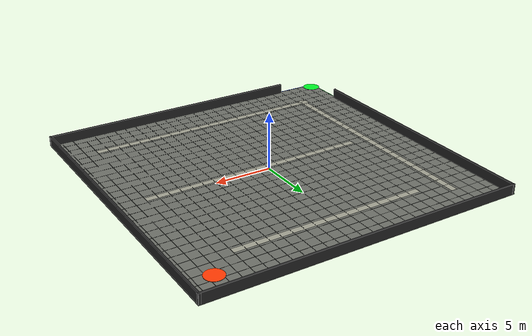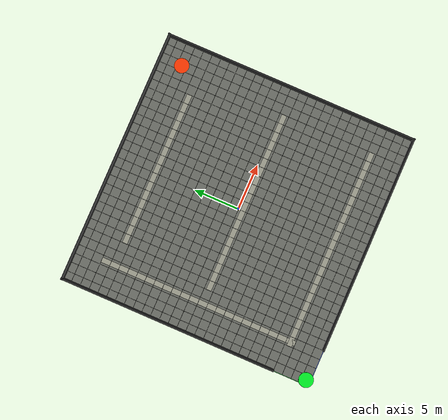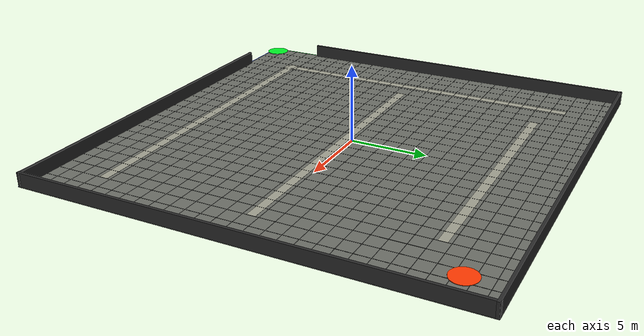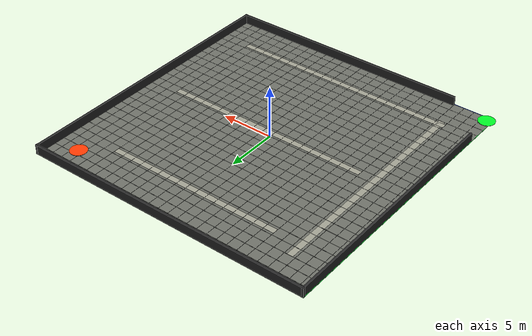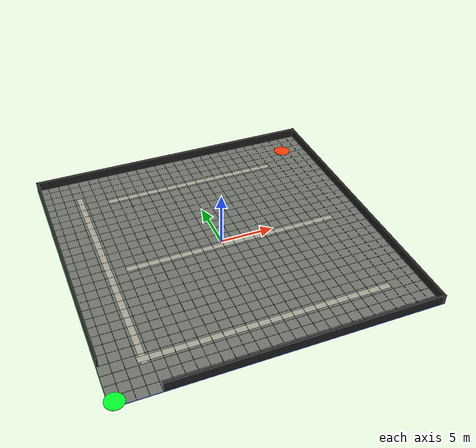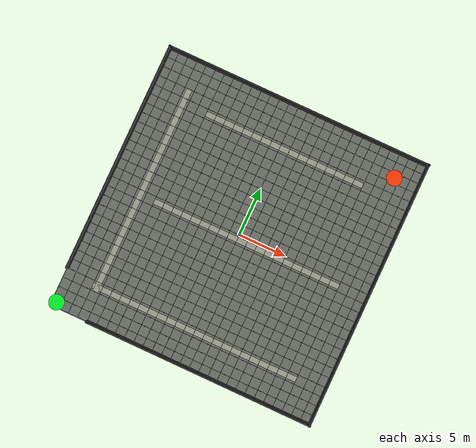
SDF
<sdf version="1.9">
 <world name="substation_complex">
  <model name="substation_map">
   <static>true</static>
   <pose>-14 -14 0 0 0 0</pose>
   <model name="ground_plane">
    <static>true</static>
    <pose>14 14 0 0 0 0</pose>
    <link name="link">
     <collision name="collision">
      <geometry><plane><normal>0 0 1</normal><size>32 32</size></plane></geometry>
     </collision>
    </link>
   </model>
   <model name="substation_floor">
    <static>true</static>
    <pose>14 14 0.01 0 0 0</pose>
    <link name="link">
     <visual name="visual">
      <geometry><box><size>28 28 0.02</size></box></geometry>
      <material>
       <ambient>0.42 0.43 0.40 1</ambient>
       <diffuse>0.42 0.43 0.40 1</diffuse>
       <specular>0.08 0.08 0.08 1</specular>
      </material>
     </visual>
    </link>
   </model>
   <model name="substation_floor_grid">
    <static>true</static>
    <link name="link">
     <visual name="x_grid_00">
      <pose>0 14 0.024 0 0 0</pose>
      <geometry><box><size>0.025 28 0.006</size></box></geometry>
      <material>
       <ambient>0.16 0.17 0.16 1</ambient>
       <diffuse>0.16 0.17 0.16 1</diffuse>
       <specular>0.08 0.08 0.08 1</specular>
      </material>
     </visual>
     <visual name="x_grid_01">
      <pose>1 14 0.024 0 0 0</pose>
      <geometry><box><size>0.025 28 0.006</size></box></geometry>
      <material>
       <ambient>0.16 0.17 0.16 1</ambient>
       <diffuse>0.16 0.17 0.16 1</diffuse>
       <specular>0.08 0.08 0.08 1</specular>
      </material>
     </visual>
     <visual name="x_grid_02">
      <pose>2 14 0.024 0 0 0</pose>
      <geometry><box><size>0.025 28 0.006</size></box></geometry>
      <material>
       <ambient>0.16 0.17 0.16 1</ambient>
       <diffuse>0.16 0.17 0.16 1</diffuse>
       <specular>0.08 0.08 0.08 1</specular>
      </material>
     </visual>
     <visual name="x_grid_03">
      <pose>3 14 0.024 0 0 0</pose>
      <geometry><box><size>0.025 28 0.006</size></box></geometry>
      <material>
       <ambient>0.16 0.17 0.16 1</ambient>
       <diffuse>0.16 0.17 0.16 1</diffuse>
       <specular>0.08 0.08 0.08 1</specular>
      </material>
     </visual>
     <visual name="x_grid_04">
      <pose>4 14 0.024 0 0 0</pose>
      <geometry><box><size>0.025 28 0.006</size></box></geometry>
      <material>
       <ambient>0.16 0.17 0.16 1</ambient>
       <diffuse>0.16 0.17 0.16 1</diffuse>
       <specular>0.08 0.08 0.08 1</specular>
      </material>
     </visual>
     <visual name="x_grid_05">
      <pose>5 14 0.024 0 0 0</pose>
      <geometry><box><size>0.025 28 0.006</size></box></geometry>
      <material>
       <ambient>0.16 0.17 0.16 1</ambient>
       <diffuse>0.16 0.17 0.16 1</diffuse>
       <specular>0.08 0.08 0.08 1</specular>
      </material>
     </visual>
     <visual name="x_grid_06">
      <pose>6 14 0.024 0 0 0</pose>
      <geometry><box><size>0.025 28 0.006</size></box></geometry>
      <material>
       <ambient>0.16 0.17 0.16 1</ambient>
       <diffuse>0.16 0.17 0.16 1</diffuse>
       <specular>0.08 0.08 0.08 1</specular>
      </material>
     </visual>
     <visual name="x_grid_07">
      <pose>7 14 0.024 0 0 0</pose>
      <geometry><box><size>0.025 28 0.006</size></box></geometry>
      <material>
       <ambient>0.16 0.17 0.16 1</ambient>
       <diffuse>0.16 0.17 0.16 1</diffuse>
       <specular>0.08 0.08 0.08 1</specular>
      </material>
     </visual>
     <visual name="x_grid_08">
      <pose>8 14 0.024 0 0 0</pose>
      <geometry><box><size>0.025 28 0.006</size></box></geometry>
      <material>
       <ambient>0.16 0.17 0.16 1</ambient>
       <diffuse>0.16 0.17 0.16 1</diffuse>
       <specular>0.08 0.08 0.08 1</specular>
      </material>
     </visual>
     <visual name="x_grid_09">
      <pose>9 14 0.024 0 0 0</pose>
      <geometry><box><size>0.025 28 0.006</size></box></geometry>
      <material>
       <ambient>0.16 0.17 0.16 1</ambient>
       <diffuse>0.16 0.17 0.16 1</diffuse>
       <specular>0.08 0.08 0.08 1</specular>
      </material>
     </visual>
     <visual name="x_grid_10">
      <pose>10 14 0.024 0 0 0</pose>
      <geometry><box><size>0.025 28 0.006</size></box></geometry>
      <material>
       <ambient>0.16 0.17 0.16 1</ambient>
       <diffuse>0.16 0.17 0.16 1</diffuse>
       <specular>0.08 0.08 0.08 1</specular>
      </material>
     </visual>
     <visual name="x_grid_11">
      <pose>11 14 0.024 0 0 0</pose>
      <geometry><box><size>0.025 28 0.006</size></box></geometry>
      <material>
       <ambient>0.16 0.17 0.16 1</ambient>
       <diffuse>0.16 0.17 0.16 1</diffuse>
       <specular>0.08 0.08 0.08 1</specular>
      </material>
     </visual>
     <visual name="x_grid_12">
      <pose>12 14 0.024 0 0 0</pose>
      <geometry><box><size>0.025 28 0.006</size></box></geometry>
      <material>
       <ambient>0.16 0.17 0.16 1</ambient>
       <diffuse>0.16 0.17 0.16 1</diffuse>
       <specular>0.08 0.08 0.08 1</specular>
      </material>
     </visual>
     <visual name="x_grid_13">
      <pose>13 14 0.024 0 0 0</pose>
      <geometry><box><size>0.025 28 0.006</size></box></geometry>
      <material>
       <ambient>0.16 0.17 0.16 1</ambient>
       <diffuse>0.16 0.17 0.16 1</diffuse>
       <specular>0.08 0.08 0.08 1</specular>
      </material>
     </visual>
     <visual name="x_grid_14">
      <pose>14 14 0.024 0 0 0</pose>
      <geometry><box><size>0.025 28 0.006</size></box></geometry>
      <material>
       <ambient>0.16 0.17 0.16 1</ambient>
       <diffuse>0.16 0.17 0.16 1</diffuse>
       <specular>0.08 0.08 0.08 1</specular>
      </material>
     </visual>
     <visual name="x_grid_15">
      <pose>15 14 0.024 0 0 0</pose>
      <geometry><box><size>0.025 28 0.006</size></box></geometry>
      <material>
       <ambient>0.16 0.17 0.16 1</ambient>
       <diffuse>0.16 0.17 0.16 1</diffuse>
       <specular>0.08 0.08 0.08 1</specular>
      </material>
     </visual>
     <visual name="x_grid_16">
      <pose>16 14 0.024 0 0 0</pose>
      <geometry><box><size>0.025 28 0.006</size></box></geometry>
      <material>
       <ambient>0.16 0.17 0.16 1</ambient>
       <diffuse>0.16 0.17 0.16 1</diffuse>
       <specular>0.08 0.08 0.08 1</specular>
      </material>
     </visual>
     <visual name="x_grid_17">
      <pose>17 14 0.024 0 0 0</pose>
      <geometry><box><size>0.025 28 0.006</size></box></geometry>
      <material>
       <ambient>0.16 0.17 0.16 1</ambient>
       <diffuse>0.16 0.17 0.16 1</diffuse>
       <specular>0.08 0.08 0.08 1</specular>
      </material>
     </visual>
     <visual name="x_grid_18">
      <pose>18 14 0.024 0 0 0</pose>
      <geometry><box><size>0.025 28 0.006</size></box></geometry>
      <material>
       <ambient>0.16 0.17 0.16 1</ambient>
       <diffuse>0.16 0.17 0.16 1</diffuse>
       <specular>0.08 0.08 0.08 1</specular>
      </material>
     </visual>
     <visual name="x_grid_19">
      <pose>19 14 0.024 0 0 0</pose>
      <geometry><box><size>0.025 28 0.006</size></box></geometry>
      <material>
       <ambient>0.16 0.17 0.16 1</ambient>
       <diffuse>0.16 0.17 0.16 1</diffuse>
       <specular>0.08 0.08 0.08 1</specular>
      </material>
     </visual>
     <visual name="x_grid_20">
      <pose>20 14 0.024 0 0 0</pose>
      <geometry><box><size>0.025 28 0.006</size></box></geometry>
      <material>
       <ambient>0.16 0.17 0.16 1</ambient>
       <diffuse>0.16 0.17 0.16 1</diffuse>
       <specular>0.08 0.08 0.08 1</specular>
      </material>
     </visual>
     <visual name="x_grid_21">
      <pose>21 14 0.024 0 0 0</pose>
      <geometry><box><size>0.025 28 0.006</size></box></geometry>
      <material>
       <ambient>0.16 0.17 0.16 1</ambient>
       <diffuse>0.16 0.17 0.16 1</diffuse>
       <specular>0.08 0.08 0.08 1</specular>
      </material>
     </visual>
     <visual name="x_grid_22">
      <pose>22 14 0.024 0 0 0</pose>
      <geometry><box><size>0.025 28 0.006</size></box></geometry>
      <material>
       <ambient>0.16 0.17 0.16 1</ambient>
       <diffuse>0.16 0.17 0.16 1</diffuse>
       <specular>0.08 0.08 0.08 1</specular>
      </material>
     </visual>
     <visual name="x_grid_23">
      <pose>23 14 0.024 0 0 0</pose>
      <geometry><box><size>0.025 28 0.006</size></box></geometry>
      <material>
       <ambient>0.16 0.17 0.16 1</ambient>
       <diffuse>0.16 0.17 0.16 1</diffuse>
       <specular>0.08 0.08 0.08 1</specular>
      </material>
     </visual>
     <visual name="x_grid_24">
      <pose>24 14 0.024 0 0 0</pose>
      <geometry><box><size>0.025 28 0.006</size></box></geometry>
      <material>
       <ambient>0.16 0.17 0.16 1</ambient>
       <diffuse>0.16 0.17 0.16 1</diffuse>
       <specular>0.08 0.08 0.08 1</specular>
      </material>
     </visual>
     <visual name="x_grid_25">
      <pose>25 14 0.024 0 0 0</pose>
      <geometry><box><size>0.025 28 0.006</size></box></geometry>
      <material>
       <ambient>0.16 0.17 0.16 1</ambient>
       <diffuse>0.16 0.17 0.16 1</diffuse>
       <specular>0.08 0.08 0.08 1</specular>
      </material>
     </visual>
     <visual name="x_grid_26">
      <pose>26 14 0.024 0 0 0</pose>
      <geometry><box><size>0.025 28 0.006</size></box></geometry>
      <material>
       <ambient>0.16 0.17 0.16 1</ambient>
       <diffuse>0.16 0.17 0.16 1</diffuse>
       <specular>0.08 0.08 0.08 1</specular>
      </material>
     </visual>
     <visual name="x_grid_27">
      <pose>27 14 0.024 0 0 0</pose>
      <geometry><box><size>0.025 28 0.006</size></box></geometry>
      <material>
       <ambient>0.16 0.17 0.16 1</ambient>
       <diffuse>0.16 0.17 0.16 1</diffuse>
       <specular>0.08 0.08 0.08 1</specular>
      </material>
     </visual>
     <visual name="x_grid_28">
      <pose>28 14 0.024 0 0 0</pose>
      <geometry><box><size>0.025 28 0.006</size></box></geometry>
      <material>
       <ambient>0.16 0.17 0.16 1</ambient>
       <diffuse>0.16 0.17 0.16 1</diffuse>
       <specular>0.08 0.08 0.08 1</specular>
      </material>
     </visual>
     <visual name="y_grid_00">
      <pose>14 0 0.024 0 0 0</pose>
      <geometry><box><size>28 0.025 0.006</size></box></geometry>
      <material>
       <ambient>0.16 0.17 0.16 1</ambient>
       <diffuse>0.16 0.17 0.16 1</diffuse>
       <specular>0.08 0.08 0.08 1</specular>
      </material>
     </visual>
     <visual name="y_grid_01">
      <pose>14 1 0.024 0 0 0</pose>
      <geometry><box><size>28 0.025 0.006</size></box></geometry>
      <material>
       <ambient>0.16 0.17 0.16 1</ambient>
       <diffuse>0.16 0.17 0.16 1</diffuse>
       <specular>0.08 0.08 0.08 1</specular>
      </material>
     </visual>
     <visual name="y_grid_02">
      <pose>14 2 0.024 0 0 0</pose>
      <geometry><box><size>28 0.025 0.006</size></box></geometry>
      <material>
       <ambient>0.16 0.17 0.16 1</ambient>
       <diffuse>0.16 0.17 0.16 1</diffuse>
       <specular>0.08 0.08 0.08 1</specular>
      </material>
     </visual>
     <visual name="y_grid_03">
      <pose>14 3 0.024 0 0 0</pose>
      <geometry><box><size>28 0.025 0.006</size></box></geometry>
      <material>
       <ambient>0.16 0.17 0.16 1</ambient>
       <diffuse>0.16 0.17 0.16 1</diffuse>
       <specular>0.08 0.08 0.08 1</specular>
      </material>
     </visual>
     <visual name="y_grid_04">
      <pose>14 4 0.024 0 0 0</pose>
      <geometry><box><size>28 0.025 0.006</size></box></geometry>
      <material>
       <ambient>0.16 0.17 0.16 1</ambient>
       <diffuse>0.16 0.17 0.16 1</diffuse>
       <specular>0.08 0.08 0.08 1</specular>
      </material>
     </visual>
     <visual name="y_grid_05">
      <pose>14 5 0.024 0 0 0</pose>
      <geometry><box><size>28 0.025 0.006</size></box></geometry>
      <material>
       <ambient>0.16 0.17 0.16 1</ambient>
       <diffuse>0.16 0.17 0.16 1</diffuse>
       <specular>0.08 0.08 0.08 1</specular>
      </material>
     </visual>
     <visual name="y_grid_06">
      <pose>14 6 0.024 0 0 0</pose>
      <geometry><box><size>28 0.025 0.006</size></box></geometry>
      <material>
       <ambient>0.16 0.17 0.16 1</ambient>
       <diffuse>0.16 0.17 0.16 1</diffuse>
       <specular>0.08 0.08 0.08 1</specular>
      </material>
     </visual>
     <visual name="y_grid_07">
      <pose>14 7 0.024 0 0 0</pose>
      <geometry><box><size>28 0.025 0.006</size></box></geometry>
      <material>
       <ambient>0.16 0.17 0.16 1</ambient>
       <diffuse>0.16 0.17 0.16 1</diffuse>
       <specular>0.08 0.08 0.08 1</specular>
      </material>
     </visual>
     <visual name="y_grid_08">
      <pose>14 8 0.024 0 0 0</pose>
      <geometry><box><size>28 0.025 0.006</size></box></geometry>
      <material>
       <ambient>0.16 0.17 0.16 1</ambient>
       <diffuse>0.16 0.17 0.16 1</diffuse>
       <specular>0.08 0.08 0.08 1</specular>
      </material>
     </visual>
     <visual name="y_grid_09">
      <pose>14 9 0.024 0 0 0</pose>
      <geometry><box><size>28 0.025 0.006</size></box></geometry>
      <material>
       <ambient>0.16 0.17 0.16 1</ambient>
       <diffuse>0.16 0.17 0.16 1</diffuse>
       <specular>0.08 0.08 0.08 1</specular>
      </material>
     </visual>
     <visual name="y_grid_10">
      <pose>14 10 0.024 0 0 0</pose>
      <geometry><box><size>28 0.025 0.006</size></box></geometry>
      <material>
       <ambient>0.16 0.17 0.16 1</ambient>
       <diffuse>0.16 0.17 0.16 1</diffuse>
       <specular>0.08 0.08 0.08 1</specular>
      </material>
     </visual>
     <visual name="y_grid_11">
      <pose>14 11 0.024 0 0 0</pose>
      <geometry><box><size>28 0.025 0.006</size></box></geometry>
      <material>
       <ambient>0.16 0.17 0.16 1</ambient>
       <diffuse>0.16 0.17 0.16 1</diffuse>
       <specular>0.08 0.08 0.08 1</specular>
      </material>
     </visual>
     <visual name="y_grid_12">
      <pose>14 12 0.024 0 0 0</pose>
      <geometry><box><size>28 0.025 0.006</size></box></geometry>
      <material>
       <ambient>0.16 0.17 0.16 1</ambient>
       <diffuse>0.16 0.17 0.16 1</diffuse>
       <specular>0.08 0.08 0.08 1</specular>
      </material>
     </visual>
     <visual name="y_grid_13">
      <pose>14 13 0.024 0 0 0</pose>
      <geometry><box><size>28 0.025 0.006</size></box></geometry>
      <material>
       <ambient>0.16 0.17 0.16 1</ambient>
       <diffuse>0.16 0.17 0.16 1</diffuse>
       <specular>0.08 0.08 0.08 1</specular>
      </material>
     </visual>
     <visual name="y_grid_14">
      <pose>14 14 0.024 0 0 0</pose>
      <geometry><box><size>28 0.025 0.006</size></box></geometry>
      <material>
       <ambient>0.16 0.17 0.16 1</ambient>
       <diffuse>0.16 0.17 0.16 1</diffuse>
       <specular>0.08 0.08 0.08 1</specular>
      </material>
     </visual>
     <visual name="y_grid_15">
      <pose>14 15 0.024 0 0 0</pose>
      <geometry><box><size>28 0.025 0.006</size></box></geometry>
      <material>
       <ambient>0.16 0.17 0.16 1</ambient>
       <diffuse>0.16 0.17 0.16 1</diffuse>
       <specular>0.08 0.08 0.08 1</specular>
      </material>
     </visual>
     <visual name="y_grid_16">
      <pose>14 16 0.024 0 0 0</pose>
      <geometry><box><size>28 0.025 0.006</size></box></geometry>
      <material>
       <ambient>0.16 0.17 0.16 1</ambient>
       <diffuse>0.16 0.17 0.16 1</diffuse>
       <specular>0.08 0.08 0.08 1</specular>
      </material>
     </visual>
     <visual name="y_grid_17">
      <pose>14 17 0.024 0 0 0</pose>
      <geometry><box><size>28 0.025 0.006</size></box></geometry>
      <material>
       <ambient>0.16 0.17 0.16 1</ambient>
       <diffuse>0.16 0.17 0.16 1</diffuse>
       <specular>0.08 0.08 0.08 1</specular>
      </material>
     </visual>
     <visual name="y_grid_18">
      <pose>14 18 0.024 0 0 0</pose>
      <geometry><box><size>28 0.025 0.006</size></box></geometry>
      <material>
       <ambient>0.16 0.17 0.16 1</ambient>
       <diffuse>0.16 0.17 0.16 1</diffuse>
       <specular>0.08 0.08 0.08 1</specular>
      </material>
     </visual>
     <visual name="y_grid_19">
      <pose>14 19 0.024 0 0 0</pose>
      <geometry><box><size>28 0.025 0.006</size></box></geometry>
      <material>
       <ambient>0.16 0.17 0.16 1</ambient>
       <diffuse>0.16 0.17 0.16 1</diffuse>
       <specular>0.08 0.08 0.08 1</specular>
      </material>
     </visual>
     <visual name="y_grid_20">
      <pose>14 20 0.024 0 0 0</pose>
      <geometry><box><size>28 0.025 0.006</size></box></geometry>
      <material>
       <ambient>0.16 0.17 0.16 1</ambient>
       <diffuse>0.16 0.17 0.16 1</diffuse>
       <specular>0.08 0.08 0.08 1</specular>
      </material>
     </visual>
     <visual name="y_grid_21">
      <pose>14 21 0.024 0 0 0</pose>
      <geometry><box><size>28 0.025 0.006</size></box></geometry>
      <material>
       <ambient>0.16 0.17 0.16 1</ambient>
       <diffuse>0.16 0.17 0.16 1</diffuse>
       <specular>0.08 0.08 0.08 1</specular>
      </material>
     </visual>
     <visual name="y_grid_22">
      <pose>14 22 0.024 0 0 0</pose>
      <geometry><box><size>28 0.025 0.006</size></box></geometry>
      <material>
       <ambient>0.16 0.17 0.16 1</ambient>
       <diffuse>0.16 0.17 0.16 1</diffuse>
       <specular>0.08 0.08 0.08 1</specular>
      </material>
     </visual>
     <visual name="y_grid_23">
      <pose>14 23 0.024 0 0 0</pose>
      <geometry><box><size>28 0.025 0.006</size></box></geometry>
      <material>
       <ambient>0.16 0.17 0.16 1</ambient>
       <diffuse>0.16 0.17 0.16 1</diffuse>
       <specular>0.08 0.08 0.08 1</specular>
      </material>
     </visual>
     <visual name="y_grid_24">
      <pose>14 24 0.024 0 0 0</pose>
      <geometry><box><size>28 0.025 0.006</size></box></geometry>
      <material>
       <ambient>0.16 0.17 0.16 1</ambient>
       <diffuse>0.16 0.17 0.16 1</diffuse>
       <specular>0.08 0.08 0.08 1</specular>
      </material>
     </visual>
     <visual name="y_grid_25">
      <pose>14 25 0.024 0 0 0</pose>
      <geometry><box><size>28 0.025 0.006</size></box></geometry>
      <material>
       <ambient>0.16 0.17 0.16 1</ambient>
       <diffuse>0.16 0.17 0.16 1</diffuse>
       <specular>0.08 0.08 0.08 1</specular>
      </material>
     </visual>
     <visual name="y_grid_26">
      <pose>14 26 0.024 0 0 0</pose>
      <geometry><box><size>28 0.025 0.006</size></box></geometry>
      <material>
       <ambient>0.16 0.17 0.16 1</ambient>
       <diffuse>0.16 0.17 0.16 1</diffuse>
       <specular>0.08 0.08 0.08 1</specular>
      </material>
     </visual>
     <visual name="y_grid_27">
      <pose>14 27 0.024 0 0 0</pose>
      <geometry><box><size>28 0.025 0.006</size></box></geometry>
      <material>
       <ambient>0.16 0.17 0.16 1</ambient>
       <diffuse>0.16 0.17 0.16 1</diffuse>
       <specular>0.08 0.08 0.08 1</specular>
      </material>
     </visual>
     <visual name="y_grid_28">
      <pose>14 28 0.024 0 0 0</pose>
      <geometry><box><size>28 0.025 0.006</size></box></geometry>
      <material>
       <ambient>0.16 0.17 0.16 1</ambient>
       <diffuse>0.16 0.17 0.16 1</diffuse>
       <specular>0.08 0.08 0.08 1</specular>
      </material>
     </visual>
    </link>
   </model>
   <model name="map_axes">
    <static>true</static>
    <link name="link">
     <visual name="east_axis">
      <pose>14 0 0.028 0 0 0</pose>
      <geometry><box><size>28 0.045 0.012</size></box></geometry>
      <material>
       <ambient>0.08 0.24 0.95 1</ambient>
       <diffuse>0.08 0.24 0.95 1</diffuse>
       <specular>0.08 0.08 0.08 1</specular>
      </material>
     </visual>
     <visual name="north_axis">
      <pose>0 14 0.028 0 0 0</pose>
      <geometry><box><size>0.045 28 0.012</size></box></geometry>
      <material>
       <ambient>0.05 0.76 0.18 1</ambient>
       <diffuse>0.05 0.76 0.18 1</diffuse>
       <specular>0.08 0.08 0.08 1</specular>
      </material>
     </visual>
    </link>
   </model>
   <model name="service_corridor_1">
    <static>true</static>
    <pose>14 3.5 0.021 0 0 0</pose>
    <link name="link">
     <visual name="visual">
      <geometry><box><size>22 0.55 0.01</size></box></geometry>
      <material>
       <ambient>0.62 0.62 0.56 1</ambient>
       <diffuse>0.62 0.62 0.56 1</diffuse>
       <specular>0.08 0.08 0.08 1</specular>
      </material>
     </visual>
    </link>
   </model>
   <model name="service_corridor_2">
    <static>true</static>
    <pose>3.5 14 0.021 0 0 0</pose>
    <link name="link">
     <visual name="visual">
      <geometry><box><size>0.55 22 0.01</size></box></geometry>
      <material>
       <ambient>0.62 0.62 0.56 1</ambient>
       <diffuse>0.62 0.62 0.56 1</diffuse>
       <specular>0.08 0.08 0.08 1</specular>
      </material>
     </visual>
    </link>
   </model>
   <model name="service_corridor_3">
    <static>true</static>
    <pose>15 13.5 0.021 0 0 0</pose>
    <link name="link">
     <visual name="visual">
      <geometry><box><size>20 0.55 0.01</size></box></geometry>
      <material>
       <ambient>0.62 0.62 0.56 1</ambient>
       <diffuse>0.62 0.62 0.56 1</diffuse>
       <specular>0.08 0.08 0.08 1</specular>
      </material>
     </visual>
    </link>
   </model>
   <model name="service_corridor_4">
    <static>true</static>
    <pose>14.5 23.5 0.021 0 0 0</pose>
    <link name="link">
     <visual name="visual">
      <geometry><box><size>17 0.55 0.01</size></box></geometry>
      <material>
       <ambient>0.62 0.62 0.56 1</ambient>
       <diffuse>0.62 0.62 0.56 1</diffuse>
       <specular>0.08 0.08 0.08 1</specular>
      </material>
     </visual>
    </link>
   </model>
   <model name="start_marker">
    <static>true</static>
    <pose>0.5 0.5 0.035 0 0 0</pose>
    <link name="link">
     <visual name="visual">
      <geometry><cylinder><radius>0.8</radius><length>0.03</length></cylinder></geometry>
      <material>
       <ambient>0.0 0.95 0.15 1</ambient>
       <diffuse>0.0 0.95 0.15 1</diffuse>
       <specular>0.08 0.08 0.08 1</specular>
      </material>
     </visual>
    </link>
   </model>
   <model name="goal_marker">
    <static>true</static>
    <pose>25.5 25.5 0.035 0 0 0</pose>
    <link name="link">
     <visual name="visual">
      <geometry><cylinder><radius>0.8</radius><length>0.03</length></cylinder></geometry>
      <material>
       <ambient>1.0 0.22 0.0 1</ambient>
       <diffuse>1.0 0.22 0.0 1</diffuse>
       <specular>0.08 0.08 0.08 1</specular>
      </material>
     </visual>
    </link>
   </model>
   <model name="fence_north">
    <static>true</static>
    <pose>14 27.88 0.45 0 0 0</pose>
    <link name="link">
     <collision name="collision"><geometry><box><size>28 0.18 0.9</size></box></geometry></collision>
     <visual name="visual">
      <geometry><box><size>28 0.18 0.9</size></box></geometry>
      <material>
       <ambient>0.16 0.16 0.16 1</ambient>
       <diffuse>0.16 0.16 0.16 1</diffuse>
       <specular>0.08 0.08 0.08 1</specular>
      </material>
     </visual>
    </link>
   </model>
   <model name="fence_east">
    <static>true</static>
    <pose>27.88 14 0.45 0 0 0</pose>
    <link name="link">
     <collision name="collision"><geometry><box><size>0.18 28 0.9</size></box></geometry></collision>
     <visual name="visual">
      <geometry><box><size>0.18 28 0.9</size></box></geometry>
      <material>
       <ambient>0.16 0.16 0.16 1</ambient>
       <diffuse>0.16 0.16 0.16 1</diffuse>
       <specular>0.08 0.08 0.08 1</specular>
      </material>
     </visual>
    </link>
   </model>
   <model name="fence_south">
    <static>true</static>
    <pose>16 0.12 0.45 0 0 0</pose>
    <link name="link">
     <collision name="collision"><geometry><box><size>24 0.18 0.9</size></box></geometry></collision>
     <visual name="visual">
      <geometry><box><size>24 0.18 0.9</size></box></geometry>
      <material>
       <ambient>0.16 0.16 0.16 1</ambient>
       <diffuse>0.16 0.16 0.16 1</diffuse>
       <specular>0.08 0.08 0.08 1</specular>
      </material>
     </visual>
    </link>
   </model>
   <model name="fence_west">
    <static>true</static>
    <pose>0.12 16 0.45 0 0 0</pose>
    <link name="link">
     <collision name="collision"><geometry><box><size>0.18 24 0.9</size></box></geometry></collision>
     <visual name="visual">
      <geometry><box><size>0.18 24 0.9</size></box></geometry>
      <material>
       <ambient>0.16 0.16 0.16 1</ambient>
       <diffuse>0.16 0.16 0.16 1</diffuse>
       <specular>0.08 0.08 0.08 1</specular>
      </material>
     </visual>
    </link>
   </model>
  </model>
 </world>
</sdf>
